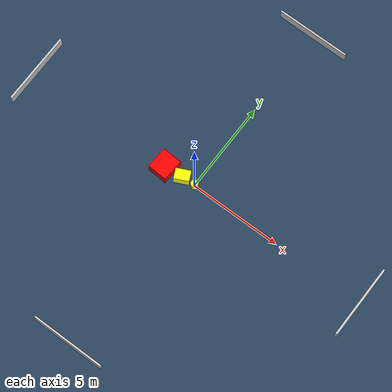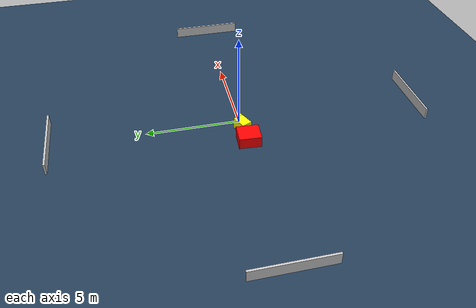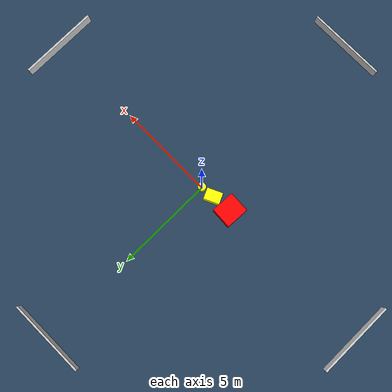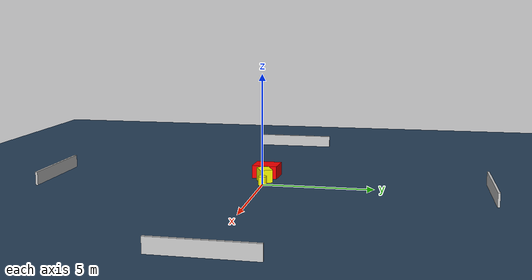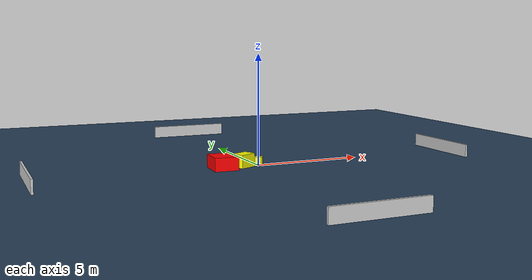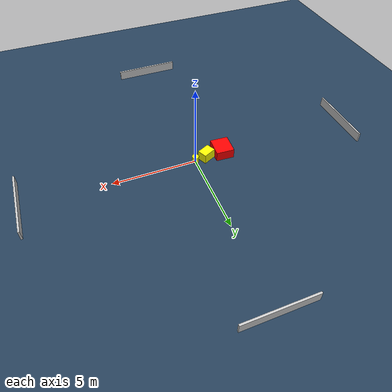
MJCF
<?xml version="1.0" ?>
<mujoco model="generated_environment">
  <option timestep="0.01" integrator="RK4" cone="elliptic"/>
  <default>
    <geom density="1"/>
  </default>
  <asset>
    <texture builtin="gradient" height="3072" name="skybox" rgb1="0.3 0.5 0.7" rgb2="0 0 0" type="skybox" width="512"/>
    <texture builtin="checker" height="300" name="groundplane" rgb1="0.2 0.3 0.4" rgb2="0.1 0.2 0.3" type="2d" width="300"/>
    <material name="groundplane" reflectance="0.2" texrepeat="5 5" texture="groundplane"/>
  </asset>
  <worldbody>
    <light dir="0 0 -1" directional="true" pos="0 0 1.5"/>
    <geom condim="3" friction="0.5 0.005 0.001" material="groundplane" name="floor" pos="0 0 0" size="0 0 0.05" type="plane"/>
    <body name="walls">
      <geom name="wall_1" condim="4" pos="-10.0 0.0 0.3" rgba="0.800000011920929 0.800000011920929 0.800000011920929 1.0" size="0.05 2.0 0.3" type="box"/>
      <geom name="wall_2" condim="4" pos="10.0 0.0 0.3" rgba="0.800000011920929 0.800000011920929 0.800000011920929 1.0" size="0.05 2.0 0.3" type="box"/>
      <geom name="wall_3" condim="4" pos="0.0 -10.0 0.3" rgba="0.800000011920929 0.800000011920929 0.800000011920929 1.0" size="2.0 0.05 0.3" type="box"/>
      <geom name="wall_4" condim="4" pos="0.0 10.0 0.3" rgba="0.800000011920929 0.800000011920929 0.800000011920929 1.0" size="2.0 0.05 0.3" type="box"/>
    </body>
    <body name="robot">
      <joint name="joint_x" type="slide" pos="0 0 0" axis="1 0 0"/>
      <joint name="joint_y" type="slide" pos="0 0 0" axis="0 1 0"/>
      <geom name="robot" type="cylinder" pos="0.0 0.0 0.2" size="0.2 0.2 0.0" mass="5.0" friction="1.0 0.005 0.0001" condim="4" rgba="1.0 1.0 0.0 1.0"/>
    </body>
    <body name="obstacle_1_movable">
      <geom name="obstacle_1_movable" condim="4" pos="-0.7133988792482049 -0.041769105302550874 0.3" euler="0 0 25.162623479097924" friction="0.0 0.005 0.001" rgba="1.0 1.0 0.0 1.0" size="0.39821356450211154 0.2865054107328039 0.3" type="box" mass="0.1"/>
      <joint type="free"/>
    </body>
    <body name="obstacle_2_static">
      <geom name="obstacle_2_static" condim="4" pos="-1.7452255102279626 -0.13097174181096552 0.3" euler="0 0 176.96253216581692" friction="0.0 0.005 0.001" rgba="1.0 0.0 0.0 1.0" size="0.5373261961123846 0.5890106527570091 0.3" type="box"/>
    </body>
  </worldbody>
  <actuator>
    <motor name="actuator_x" joint="joint_x" gear="1" ctrlrange="-1 1"/>
    <motor name="actuator_y" joint="joint_y" gear="1" ctrlrange="-1 1"/>
  </actuator>
</mujoco>
